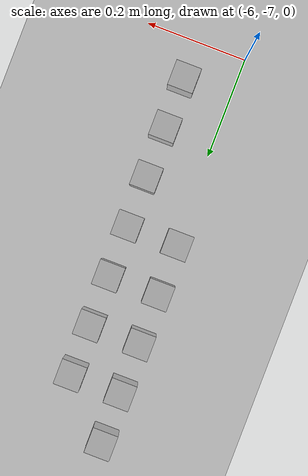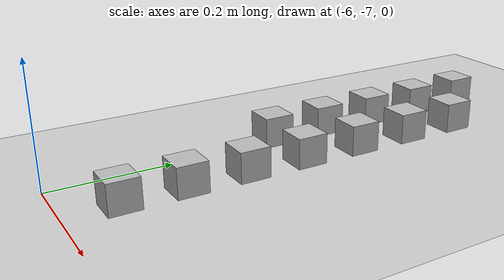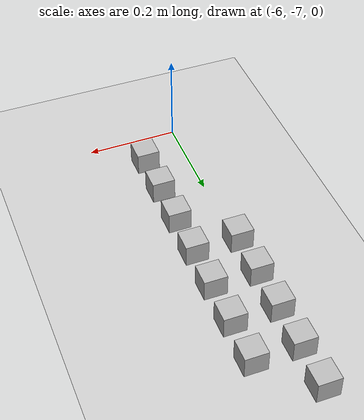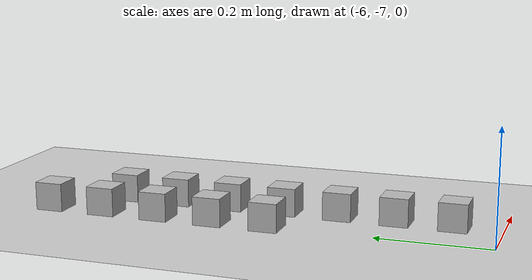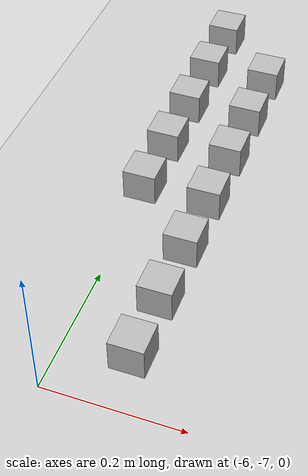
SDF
<sdf version="1.4">
 <world name="default">
  <model name="ground_plane">
   <static>1</static>
   <link name="link">
    <collision name="collision">
     <geometry><plane><normal>0 0 1</normal><size>100 100</size></plane></geometry>
     <surface><friction><ode><mu>100</mu><mu2>50</mu2></ode></friction></surface>
    </collision>
    <visual name="visual">
     <cast_shadows>0</cast_shadows>
     <geometry><plane><normal>0 0 1</normal><size>100 100</size></plane></geometry>
     <material>
      <script><uri>file://media/materials/scripts/gazebo.material</uri><name>Gazebo/Grey</name></script>
     </material>
    </visual>
    <velocity_decay><linear>0</linear><angular>0</angular></velocity_decay>
   </link>
  </model>
  <model name="at71">
   <static>0</static>
   <link name="link">
    <inertial>
     <mass>0.01</mass>
     <inertia><ixx>4e-05</ixx><ixy>0</ixy><ixz>0</ixz><iyy>4e-05</iyy><iyz>0</iyz><izz>4e-05</izz></inertia>
    </inertial>
    <visual name="visual">
     <geometry><box><size>0.05 0.05 0.05</size></box></geometry>
     <material>
      <script>
       <uri>model://at0/materials/scripts</uri>
       <uri>model://at0/materials/textures</uri>
       <name>at0/Diffuse</name>
      </script>
     </material>
    </visual>
    <collision name="collision">
     <geometry><box><size>0.05 0.05 0.05</size></box></geometry>
     <surface><friction><ode><mu>0.8</mu><mu2>0.7</mu2></ode></friction></surface>
    </collision>
    <velocity_decay><linear>0</linear><angular>0</angular></velocity_decay>
   </link>
   <pose>-5.90353 -6.91802 0.025 0 -0 0</pose>
  </model>
  <model name="at79">
   <static>0</static>
   <link name="link">
    <inertial>
     <mass>0.01</mass>
     <inertia><ixx>4e-05</ixx><ixy>0</ixy><ixz>0</ixz><iyy>4e-05</iyy><iyz>0</iyz><izz>4e-05</izz></inertia>
    </inertial>
    <visual name="visual">
     <geometry><box><size>0.05 0.05 0.05</size></box></geometry>
     <material>
      <script>
       <uri>model://at0/materials/scripts</uri>
       <uri>model://at0/materials/textures</uri>
       <name>at0/Diffuse</name>
      </script>
     </material>
    </visual>
    <collision name="collision">
     <geometry><box><size>0.05 0.05 0.05</size></box></geometry>
     <surface><friction><ode><mu>0.8</mu><mu2>0.7</mu2></ode></friction></surface>
    </collision>
    <velocity_decay><linear>0</linear><angular>0</angular></velocity_decay>
   </link>
   <pose>-5.90353 -6.81802 0.025 0 -0 0</pose>
  </model>
  <model name="at87">
   <static>0</static>
   <link name="link">
    <inertial>
     <mass>0.01</mass>
     <inertia><ixx>4e-05</ixx><ixy>0</ixy><ixz>0</ixz><iyy>4e-05</iyy><iyz>0</iyz><izz>4e-05</izz></inertia>
    </inertial>
    <visual name="visual">
     <geometry><box><size>0.05 0.05 0.05</size></box></geometry>
     <material>
      <script>
       <uri>model://at0/materials/scripts</uri>
       <uri>model://at0/materials/textures</uri>
       <name>at0/Diffuse</name>
      </script>
     </material>
    </visual>
    <collision name="collision">
     <geometry><box><size>0.05 0.05 0.05</size></box></geometry>
     <surface><friction><ode><mu>0.8</mu><mu2>0.7</mu2></ode></friction></surface>
    </collision>
    <velocity_decay><linear>0</linear><angular>0</angular></velocity_decay>
   </link>
   <pose>-5.90353 -6.71802 0.025 0 -0 0</pose>
  </model>
  <model name="at94">
   <static>0</static>
   <link name="link">
    <inertial>
     <mass>0.01</mass>
     <inertia><ixx>4e-05</ixx><ixy>0</ixy><ixz>0</ixz><iyy>4e-05</iyy><iyz>0</iyz><izz>4e-05</izz></inertia>
    </inertial>
    <visual name="visual">
     <geometry><box><size>0.05 0.05 0.05</size></box></geometry>
     <material>
      <script>
       <uri>model://at0/materials/scripts</uri>
       <uri>model://at0/materials/textures</uri>
       <name>at0/Diffuse</name>
      </script>
     </material>
    </visual>
    <collision name="collision">
     <geometry><box><size>0.05 0.05 0.05</size></box></geometry>
     <surface><friction><ode><mu>0.8</mu><mu2>0.7</mu2></ode></friction></surface>
    </collision>
    <velocity_decay><linear>0</linear><angular>0</angular></velocity_decay>
   </link>
   <pose>-6.00353 -6.61802 0.025 0 -0 0</pose>
  </model>
  <model name="at95">
   <static>0</static>
   <link name="link">
    <inertial>
     <mass>0.01</mass>
     <inertia><ixx>4e-05</ixx><ixy>0</ixy><ixz>0</ixz><iyy>4e-05</iyy><iyz>0</iyz><izz>4e-05</izz></inertia>
    </inertial>
    <visual name="visual">
     <geometry><box><size>0.05 0.05 0.05</size></box></geometry>
     <material>
      <script>
       <uri>model://at0/materials/scripts</uri>
       <uri>model://at0/materials/textures</uri>
       <name>at0/Diffuse</name>
      </script>
     </material>
    </visual>
    <collision name="collision">
     <geometry><box><size>0.05 0.05 0.05</size></box></geometry>
     <surface><friction><ode><mu>0.8</mu><mu2>0.7</mu2></ode></friction></surface>
    </collision>
    <velocity_decay><linear>0</linear><angular>0</angular></velocity_decay>
   </link>
   <pose>-5.90353 -6.61802 0.025 0 -0 0</pose>
  </model>
  <model name="at102">
   <static>0</static>
   <link name="link">
    <inertial>
     <mass>0.01</mass>
     <inertia><ixx>4e-05</ixx><ixy>0</ixy><ixz>0</ixz><iyy>4e-05</iyy><iyz>0</iyz><izz>4e-05</izz></inertia>
    </inertial>
    <visual name="visual">
     <geometry><box><size>0.05 0.05 0.05</size></box></geometry>
     <material>
      <script>
       <uri>model://at0/materials/scripts</uri>
       <uri>model://at0/materials/textures</uri>
       <name>at0/Diffuse</name>
      </script>
     </material>
    </visual>
    <collision name="collision">
     <geometry><box><size>0.05 0.05 0.05</size></box></geometry>
     <surface><friction><ode><mu>0.8</mu><mu2>0.7</mu2></ode></friction></surface>
    </collision>
    <velocity_decay><linear>0</linear><angular>0</angular></velocity_decay>
   </link>
   <pose>-6.00353 -6.51802 0.025 0 -0 0</pose>
  </model>
  <model name="at103">
   <static>0</static>
   <link name="link">
    <inertial>
     <mass>0.01</mass>
     <inertia><ixx>4e-05</ixx><ixy>0</ixy><ixz>0</ixz><iyy>4e-05</iyy><iyz>0</iyz><izz>4e-05</izz></inertia>
    </inertial>
    <visual name="visual">
     <geometry><box><size>0.05 0.05 0.05</size></box></geometry>
     <material>
      <script>
       <uri>model://at0/materials/scripts</uri>
       <uri>model://at0/materials/textures</uri>
       <name>at0/Diffuse</name>
      </script>
     </material>
    </visual>
    <collision name="collision">
     <geometry><box><size>0.05 0.05 0.05</size></box></geometry>
     <surface><friction><ode><mu>0.8</mu><mu2>0.7</mu2></ode></friction></surface>
    </collision>
    <velocity_decay><linear>0</linear><angular>0</angular></velocity_decay>
   </link>
   <pose>-5.90353 -6.51802 0.025 0 -0 0</pose>
  </model>
  <model name="at110">
   <static>0</static>
   <link name="link">
    <inertial>
     <mass>0.01</mass>
     <inertia><ixx>4e-05</ixx><ixy>0</ixy><ixz>0</ixz><iyy>4e-05</iyy><iyz>0</iyz><izz>4e-05</izz></inertia>
    </inertial>
    <visual name="visual">
     <geometry><box><size>0.05 0.05 0.05</size></box></geometry>
     <material>
      <script>
       <uri>model://at0/materials/scripts</uri>
       <uri>model://at0/materials/textures</uri>
       <name>at0/Diffuse</name>
      </script>
     </material>
    </visual>
    <collision name="collision">
     <geometry><box><size>0.05 0.05 0.05</size></box></geometry>
     <surface><friction><ode><mu>0.8</mu><mu2>0.7</mu2></ode></friction></surface>
    </collision>
    <velocity_decay><linear>0</linear><angular>0</angular></velocity_decay>
   </link>
   <pose>-6.00353 -6.41802 0.025 0 -0 0</pose>
  </model>
  <model name="at111">
   <static>0</static>
   <link name="link">
    <inertial>
     <mass>0.01</mass>
     <inertia><ixx>4e-05</ixx><ixy>0</ixy><ixz>0</ixz><iyy>4e-05</iyy><iyz>0</iyz><izz>4e-05</izz></inertia>
    </inertial>
    <visual name="visual">
     <geometry><box><size>0.05 0.05 0.05</size></box></geometry>
     <material>
      <script>
       <uri>model://at0/materials/scripts</uri>
       <uri>model://at0/materials/textures</uri>
       <name>at0/Diffuse</name>
      </script>
     </material>
    </visual>
    <collision name="collision">
     <geometry><box><size>0.05 0.05 0.05</size></box></geometry>
     <surface><friction><ode><mu>0.8</mu><mu2>0.7</mu2></ode></friction></surface>
    </collision>
    <velocity_decay><linear>0</linear><angular>0</angular></velocity_decay>
   </link>
   <pose>-5.90353 -6.41802 0.025 0 -0 0</pose>
  </model>
  <model name="at118">
   <static>0</static>
   <link name="link">
    <inertial>
     <mass>0.01</mass>
     <inertia><ixx>4e-05</ixx><ixy>0</ixy><ixz>0</ixz><iyy>4e-05</iyy><iyz>0</iyz><izz>4e-05</izz></inertia>
    </inertial>
    <visual name="visual">
     <geometry><box><size>0.05 0.05 0.05</size></box></geometry>
     <material>
      <script>
       <uri>model://at0/materials/scripts</uri>
       <uri>model://at0/materials/textures</uri>
       <name>at0/Diffuse</name>
      </script>
     </material>
    </visual>
    <collision name="collision">
     <geometry><box><size>0.05 0.05 0.05</size></box></geometry>
     <surface><friction><ode><mu>0.8</mu><mu2>0.7</mu2></ode></friction></surface>
    </collision>
    <velocity_decay><linear>0</linear><angular>0</angular></velocity_decay>
   </link>
   <pose>-6.00353 -6.31802 0.025 0 -0 0</pose>
  </model>
  <model name="at119">
   <static>0</static>
   <link name="link">
    <inertial>
     <mass>0.01</mass>
     <inertia><ixx>4e-05</ixx><ixy>0</ixy><ixz>0</ixz><iyy>4e-05</iyy><iyz>0</iyz><izz>4e-05</izz></inertia>
    </inertial>
    <visual name="visual">
     <geometry><box><size>0.05 0.05 0.05</size></box></geometry>
     <material>
      <script>
       <uri>model://at0/materials/scripts</uri>
       <uri>model://at0/materials/textures</uri>
       <name>at0/Diffuse</name>
      </script>
     </material>
    </visual>
    <collision name="collision">
     <geometry><box><size>0.05 0.05 0.05</size></box></geometry>
     <surface><friction><ode><mu>0.8</mu><mu2>0.7</mu2></ode></friction></surface>
    </collision>
    <velocity_decay><linear>0</linear><angular>0</angular></velocity_decay>
   </link>
   <pose>-5.90353 -6.31802 0.025 0 -0 0</pose>
  </model>
  <model name="at126">
   <static>0</static>
   <link name="link">
    <inertial>
     <mass>0.01</mass>
     <inertia><ixx>4e-05</ixx><ixy>0</ixy><ixz>0</ixz><iyy>4e-05</iyy><iyz>0</iyz><izz>4e-05</izz></inertia>
    </inertial>
    <visual name="visual">
     <geometry><box><size>0.05 0.05 0.05</size></box></geometry>
     <material>
      <script>
       <uri>model://at0/materials/scripts</uri>
       <uri>model://at0/materials/textures</uri>
       <name>at0/Diffuse</name>
      </script>
     </material>
    </visual>
    <collision name="collision">
     <geometry><box><size>0.05 0.05 0.05</size></box></geometry>
     <surface><friction><ode><mu>0.8</mu><mu2>0.7</mu2></ode></friction></surface>
    </collision>
    <velocity_decay><linear>0</linear><angular>0</angular></velocity_decay>
   </link>
   <pose>-6.00353 -6.21802 0.025 0 -0 0</pose>
  </model>
 </world>
</sdf>
